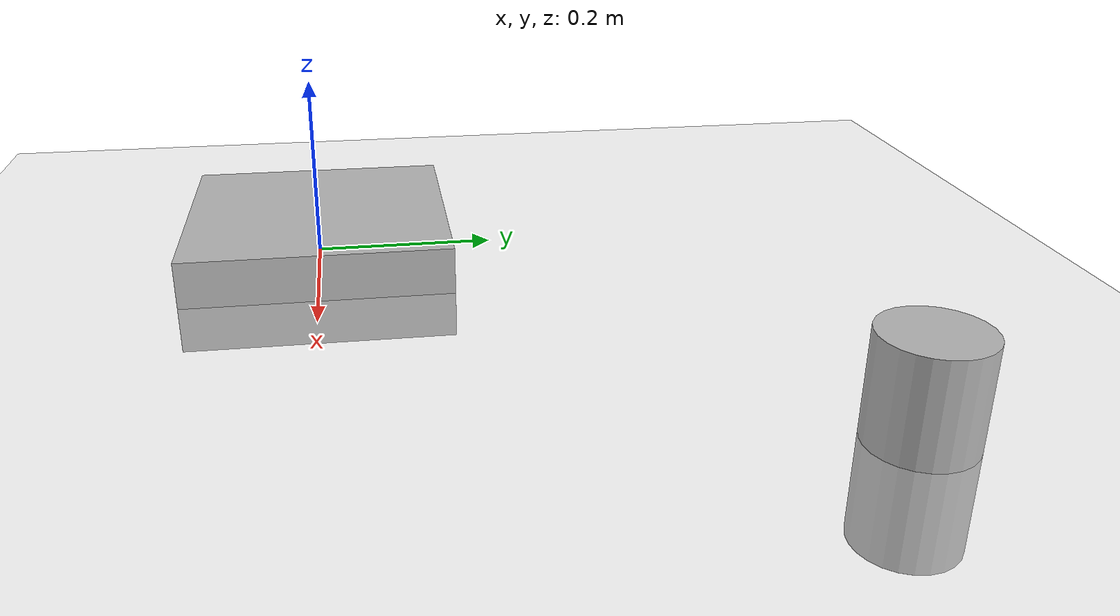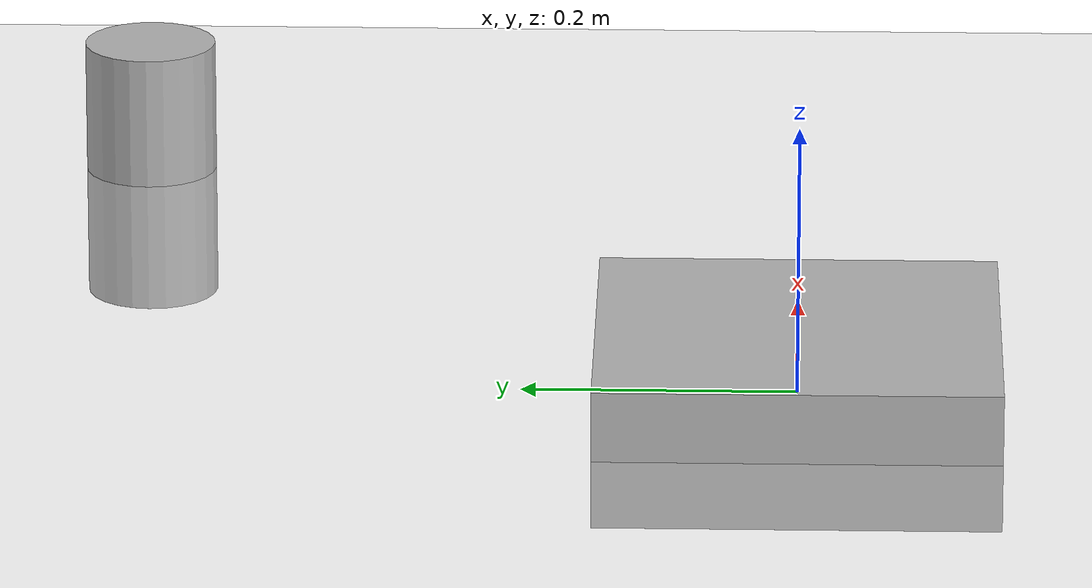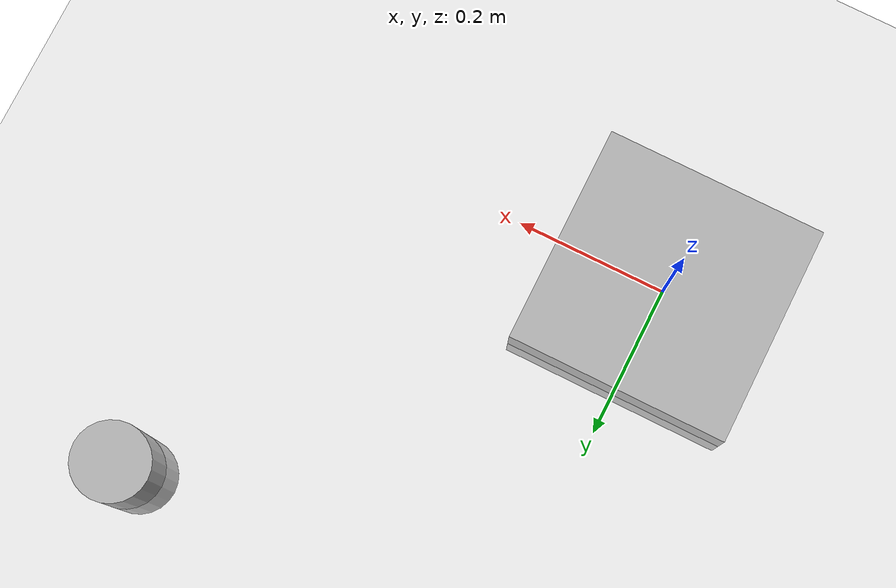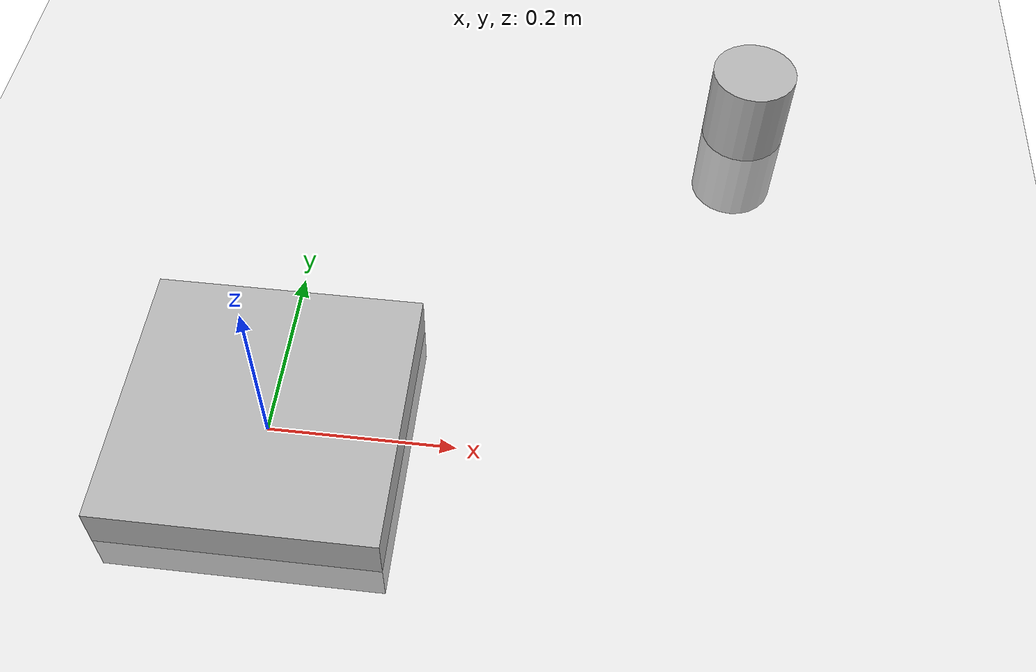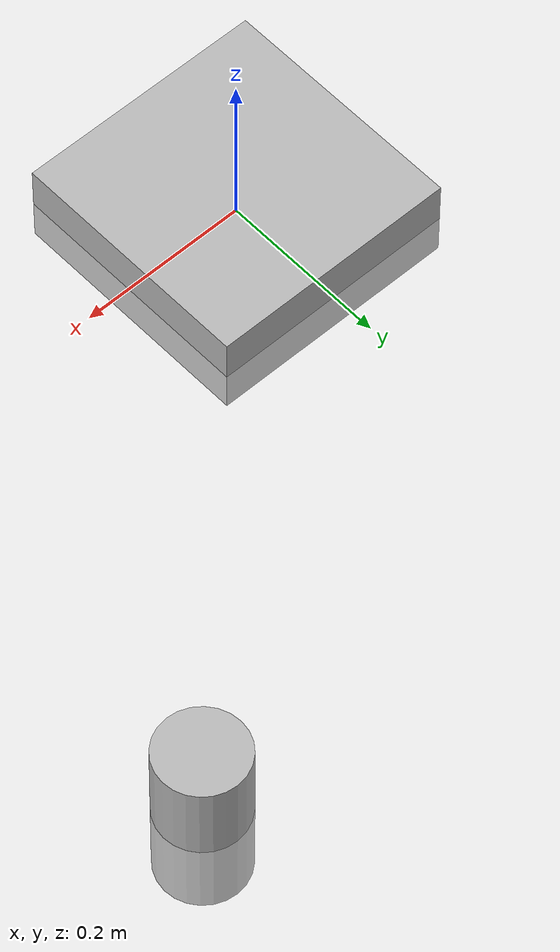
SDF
<?xml version="1.0" ?>

<sdf version="1.7">
  <world name="underwater_world">
    <physics name="default_physics" type="ode">
      <gravity>0 0 -9.8</gravity>
      <max_step_size>0.01</max_step_size>
      <real_time_update_rate>1000</real_time_update_rate>
    </physics>
    <include>
      <uri>model://sun</uri>
    </include>
    <include>
      <uri>model://ground_plane</uri>
    </include>
    <include>
      <uri>model://underwater_rover</uri>
    </include>
  </world>
</sdf>

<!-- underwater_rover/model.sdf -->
<!-- the below is for the basic structure of the rover-->
<sdf version="1.7">
  <model name="underwater_rover">
    <static>false</static>
    <link name="base_link">
      <pose>0 0 0 0 0 0</pose>
      <inertial>
        <mass>10.0</mass>
        <inertia>
          <ixx>0.1</ixx>
          <iyy>0.1</iyy>
          <izz>0.1</izz>
        </inertia>
      </inertial>
      <visual name="base_visual">
        <geometry>
          <box>
            <size> 0.2921 0.2921 0.1016</size>
          </box>
        </geometry>
      </visual>
      <collision name="base_collision">
        <geometry>
          <box>
            <size>1 0.5 0.3</size>
          </box>
        </geometry>
      </collision>
    </link>

    <!-- Thruster 1 -->
    <link name="thruster_1">
      <pose>0.5 0.5 0 0 0 0</pose>
      <visual name="thruster_visual_1">
        <geometry>
          <cylinder>
            <radius>0.05</radius>
            <length>0.2</length>
          </cylinder>
        </geometry>
      </visual>
      <collision name="thruster_collision_1">
        <geometry>
          <cylinder>
            <radius>0.05</radius>
            <length>0.2</length>
          </cylinder>
        </geometry>
      </collision>
    </link>
    <joint name="thruster_1_joint" type="fixed">
      <parent>base_link</parent>
      <child>thruster_1</child>
    </joint>

    <!-- Thruster 2 -->
    <link name="thruster_2">
      <pose>0.5 0.5 0 0 0 0</pose>
      <visual name="thruster_visual_2">
        <geometry>
          <cylinder>
            <radius>0.05</radius>
            <length>0.2</length>
          </cylinder>
        </geometry>
      </visual>
      <collision name="thruster_collision_2">
        <geometry>
          <cylinder>
            <radius>0.05</radius>
            <length>0.2</length>
          </cylinder>
        </geometry>
      </collision>
    </link>
    <joint name="thruster_2_joint" type="fixed">
      <parent>base_link</parent>
      <child>thruster_1</child>
    </joint>

    <!-- Thruster 3 -->
    <link name="thruster_3">
      <pose>0.5 0.5 0 0 0 0</pose>
      <visual name="thruster_visual_3">
        <geometry>
          <cylinder>
            <radius>0.05</radius>
            <length>0.2</length>
          </cylinder>
        </geometry>
      </visual>
      <collision name="thruster_collision_3">
        <geometry>
          <cylinder>
            <radius>0.05</radius>
            <length>0.2</length>
          </cylinder>
        </geometry>
      </collision>
    </link>
    <joint name="thruster_3_joint" type="fixed">
      <parent>base_link</parent>
      <child>thruster_1</child>
    </joint>

    <!-- Thruster 4 -->
    <link name="thruster_4">
      <pose>0.5 0.5 0 0 0 0</pose>
      <visual name="thruster_visual_4">
        <geometry>
          <cylinder>
            <radius>0.05</radius>
            <length>0.2</length>
          </cylinder>
        </geometry>
      </visual>
      <collision name="thruster_collision_4">
        <geometry>
          <cylinder>
            <radius>0.05</radius>
            <length>0.2</length>
          </cylinder>
        </geometry>
      </collision>
    </link>
    <joint name="thruster_4_joint" type="fixed">
      <parent>base_link</parent>
      <child>thruster_1</child>
    </joint>

    <!-- Thruster 5 -->
    <link name="thruster_5">
      <pose>0.5 0.5 0 0 0 0</pose>
      <visual name="thruster_visual_5">
        <geometry>
          <cylinder>
            <radius>0.05</radius>
            <length>0.2</length>
          </cylinder>
        </geometry>
      </visual>
      <collision name="thruster_collision_5">
        <geometry>
          <cylinder>
            <radius>0.05</radius>
            <length>0.2</length>
          </cylinder>
        </geometry>
      </collision>
    </link>
    <joint name="thruster_5_joint" type="fixed">
      <parent>base_link</parent>
      <child>thruster_1</child>
    </joint>

    <!-- Thruster 6 -->
    <link name="thruster_6">
      <pose>0.5 0.5 0 0 0 0</pose>
      <visual name="thruster_visual_6">
        <geometry>
          <cylinder>
            <radius>0.05</radius>
            <length>0.2</length>
          </cylinder>
        </geometry>
      </visual>
      <collision name="thruster_collision_6">
        <geometry>
          <cylinder>
            <radius>0.05</radius>
            <length>0.2</length>
          </cylinder>c
        </geometry>
      </collision>
    </link>
    <joint name="thruster_6_joint" type="fixed">
      <parent>base_link</parent>
      <child>thruster_1</child>
    </joint>

    <!-- Thruster 7 -->
    <link name="thruster_7">
      <pose>0.5 0.5 0 0 0 0</pose>
      <visual name="thruster_visual_7">
        <geometry>
          <cylinder>
            <radius>0.05</radius>
            <length>0.2</length>
          </cylinder>
        </geometry>
      </visual>
      <collision name="thruster_collision_7">
        <geometry>
          <cylinder>
            <radius>0.05</radius>
            <length>0.2</length>
          </cylinder>
        </geometry>
      </collision>
    </link>
    <joint name="thruster_7_joint" type="fixed">
      <parent>base_link</parent>
      <child>thruster_1</child>
    </joint>

    <!-- Thruster 8 -->
    <link name="thruster_8">
      <pose>0.5 0.5 0 0 0 0</pose>
      <visual name="thruster_visual_8">
        <geometry>
          <cylinder>
            <radius>0.05</radius>
            <length>0.2</length>
          </cylinder>
        </geometry>
      </visual>
      <collision name="thruster_collision_8">
        <geometry>
          <cylinder>
            <radius>0.05</radius>
            <length>0.2</length>
          </cylinder>
        </geometry>
      </collision>
    </link>
    <joint name="thruster_8_joint" type="fixed">
      <parent>base_link</parent>
      <child>thruster_1</child>
    </joint>

    <!-- OAK-D Lite Camera -->
    <link name="camera_link">
      <pose>0.0 0.0 0.5 0 0 0</pose>
      <sensor name="camera" type="camera">
        <camera>
          <horizontal_fov>1.047</horizontal_fov>
          <image>
            <width>640</width>
            <height>480</height>
            <format>R8G8B8</format>
          </image>
          <clip>
            <near>0.1</near>
            <far>100</far>
          </clip>
        </camera>
        <plugin name="camera_controller" filename="libgazebo_ros_camera.so">
          <alwaysOn>true</alwaysOn>
          <updateRate>30.0</updateRate>
          <cameraName>my_camera</cameraName>
          <imageTopicName>/my_camera/image_raw</imageTopicName>
          <cameraInfoTopicName>/my_camera/camera_info</cameraInfoTopicName>
        </plugin>
      </sensor>
    </link>
    <joint name="camera_joint" type="fixed">
      <parent>base_link</parent>
      <child>camera_link</child>
    </joint>

    <!-- IMU Sensor -->
    <link name="imu_link">
      <pose>0 0 0.3 0 0 0</pose>
      <sensor name="imu_sensor" type="imu">
        <imu>
          <topic>/imu/data</topic>
        </imu>
      </sensor>
    </link>
    <joint name="imu_joint" type="fixed">
      <parent>base_link</parent>
      <child>imu_link</child>
    </joint>

  </model>
</sdf>
